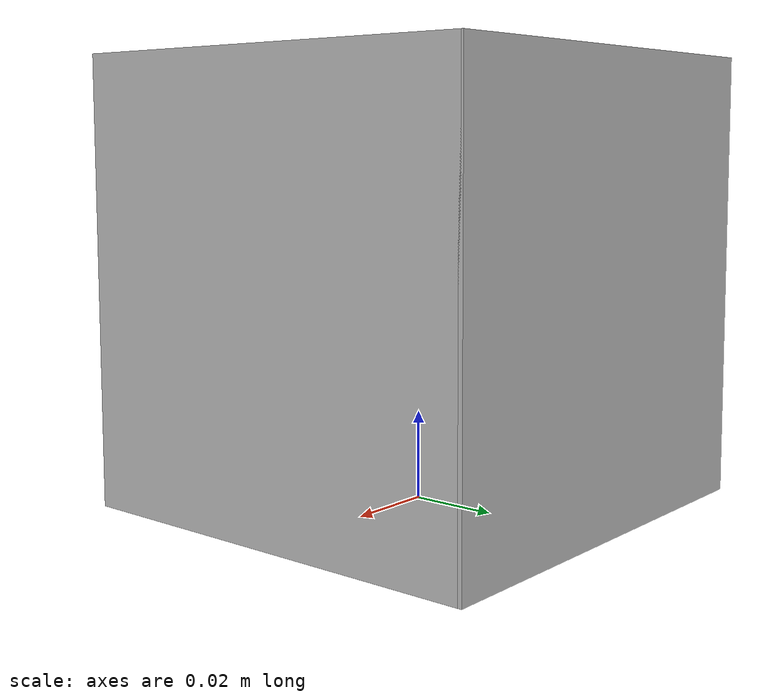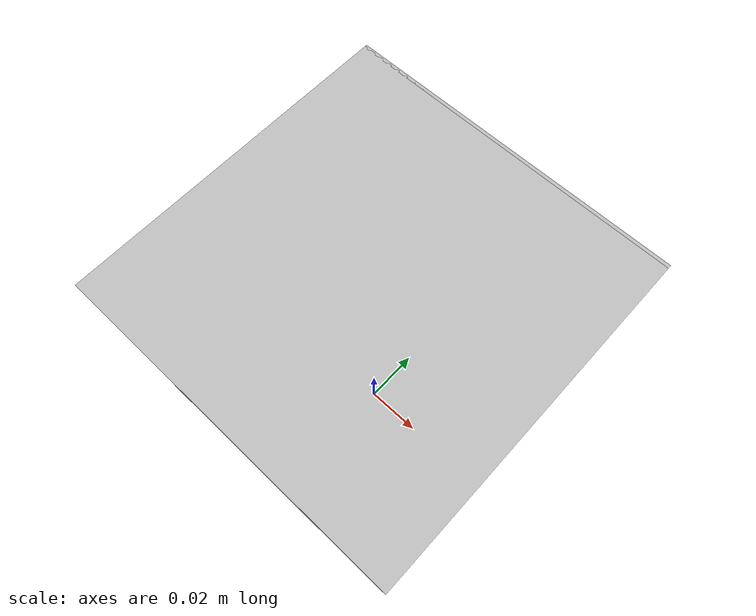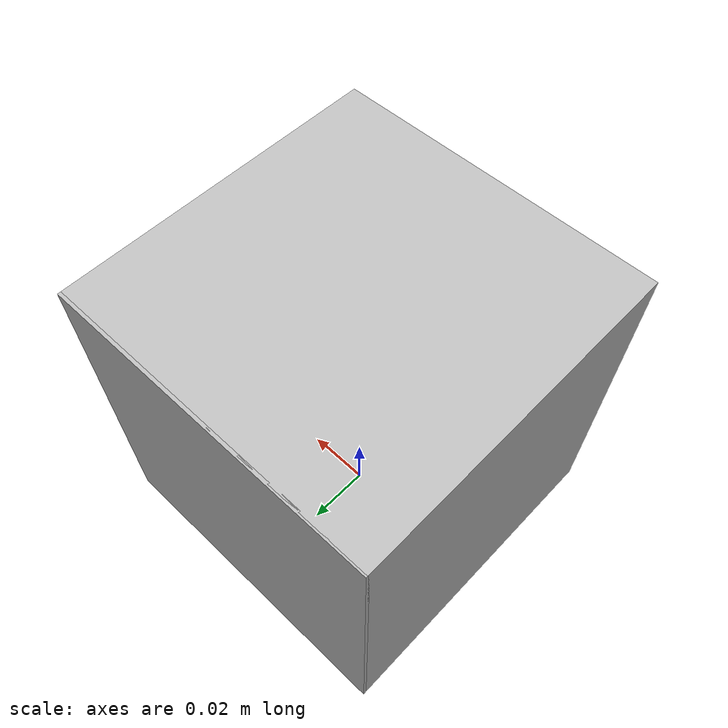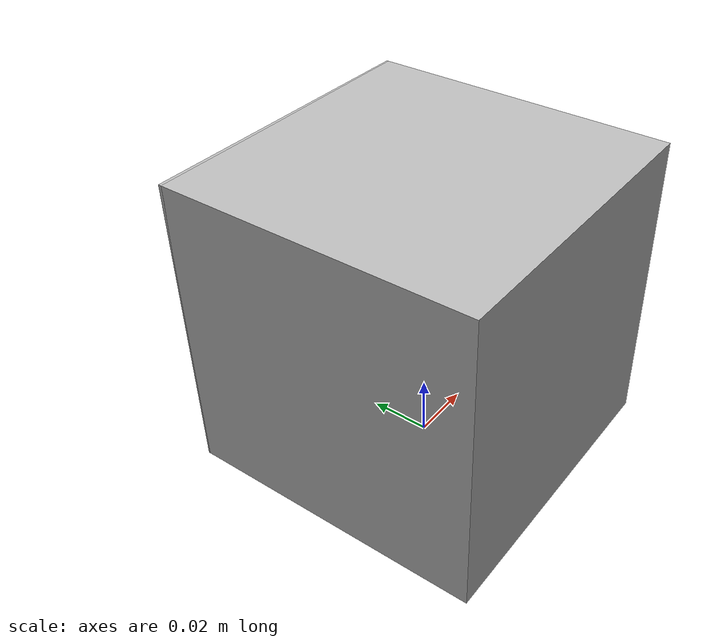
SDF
<?xml version="1.0" ?>
<sdf version="1.5">
  <model name="yibiao21">
    <link name="link">
      <pose>0 0.05 0.05 0 0 0</pose>
      <inertial>
        <mass>0.001</mass>
        <inertia>
          <ixx>0.00058</ixx>
          <ixy>0</ixy>
          <ixz>0</ixz>
          <iyy>0.00058</iyy>
          <iyz>0</iyz>
          <izz>0.00019</izz>
        </inertia>
      </inertial>
      <collision name="collision">
        <geometry>
          <box>
            <size>0.1 0.001 0.1</size>
          </box>
        </geometry>
      </collision>
      <visual name="visual">
        <geometry>
          <box>
            <size>0.1 0.001 0.1</size>
          </box>
        </geometry>
        <material>
          <script>
            <uri>model://yibiao21/materials/scripts</uri>
            <uri>model://yibiao21/materials/textures</uri>
            <name>yibiao21/Diffuse</name>
          </script>
        </material>
      </visual>
    </link>
    <link name="base">
      <pose>0 0 0.05 0 0 0</pose>
      <inertial>
        <mass>0.390</mass>
        <inertia>
          <ixx>0.00058</ixx>
          <ixy>0</ixy>
          <ixz>0</ixz>
          <iyy>0.00058</iyy>
          <iyz>0</iyz>
          <izz>0.00019</izz>
        </inertia>
      </inertial>
      <collision name="collision">
        <geometry>
          <box>
            <size>0.1 0.1 0.1</size>
          </box>
        </geometry>
      </collision>
      <visual name="visual">
        <geometry>
          <box>
            <size>0.1 0.1 0.1</size>
          </box>
        </geometry>
      </visual>
    </link>
  </model>
</sdf>
